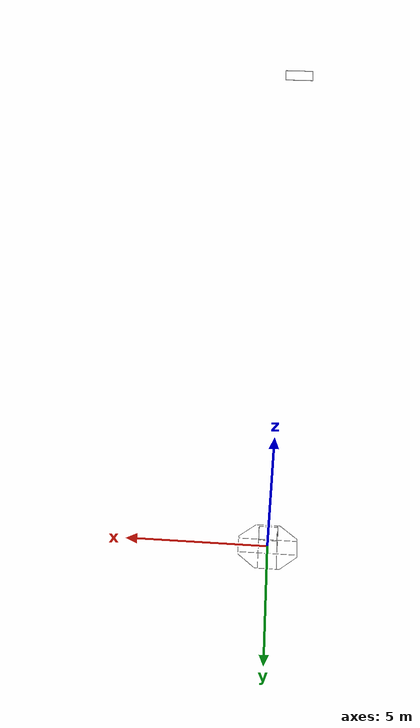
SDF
<?xml version="1.0"?>
<sdf version="1.6">
  <model name="Delivery Octogon">
    <static>true</static>
    <link name="base_link">
      <visual name="delivery octagon">
        <geometry>
          <mesh>
            <uri>model://delivery_octagon/assets/delivery_octagon.stl</uri>
            <scale>0.001 0.001 0.001</scale>
          </mesh>
        </geometry>
      </visual>
      <collision name="delivery_octagon">
        <geometry>
          <mesh>
            <uri>model://delivery_octagon/assets/delivery_octagon.stl</uri>
            <scale>0.001 0.001 0.001</scale>
          </mesh>
        </geometry>
      </collision>
    </link>
  </model>
</sdf>
